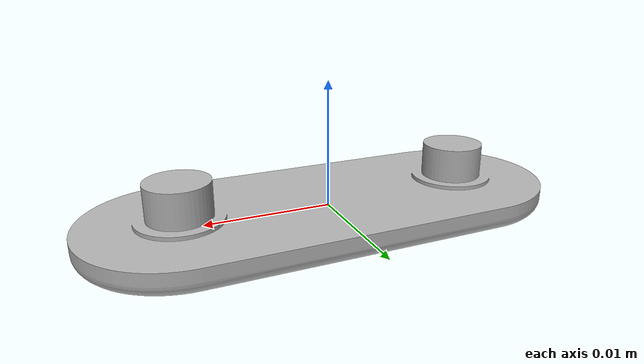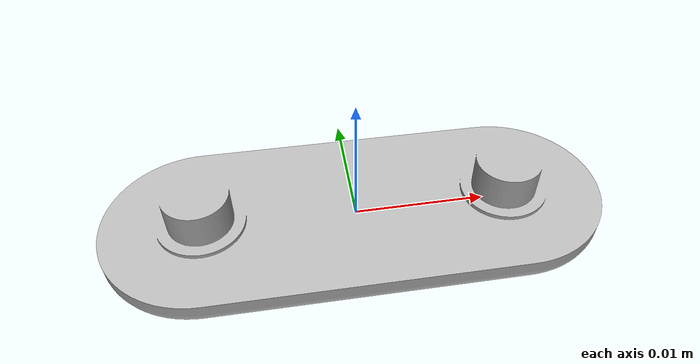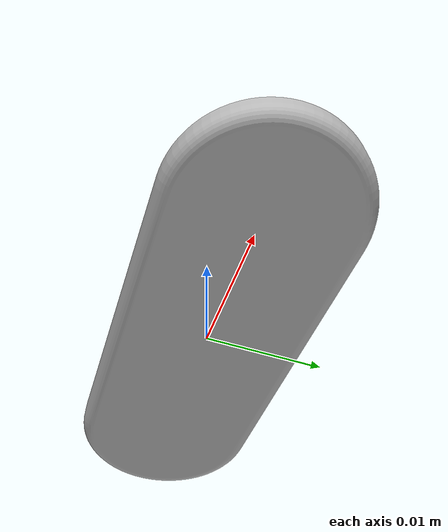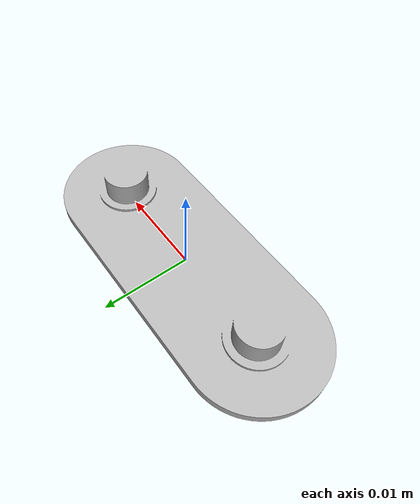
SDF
<?xml version="1.0" ?>
<sdf version="1.5">
  <model name="top_casing">
    <static>false</static>
    <link name="link">
      <visual name="visual">
        <geometry>
          <mesh>
            <scale>1 1 1</scale>
            <uri>model://Fidget/top_casing/meshes/top_casing.dae</uri>
          </mesh>
        </geometry>
      </visual>
    </link>
  </model>
</sdf>
